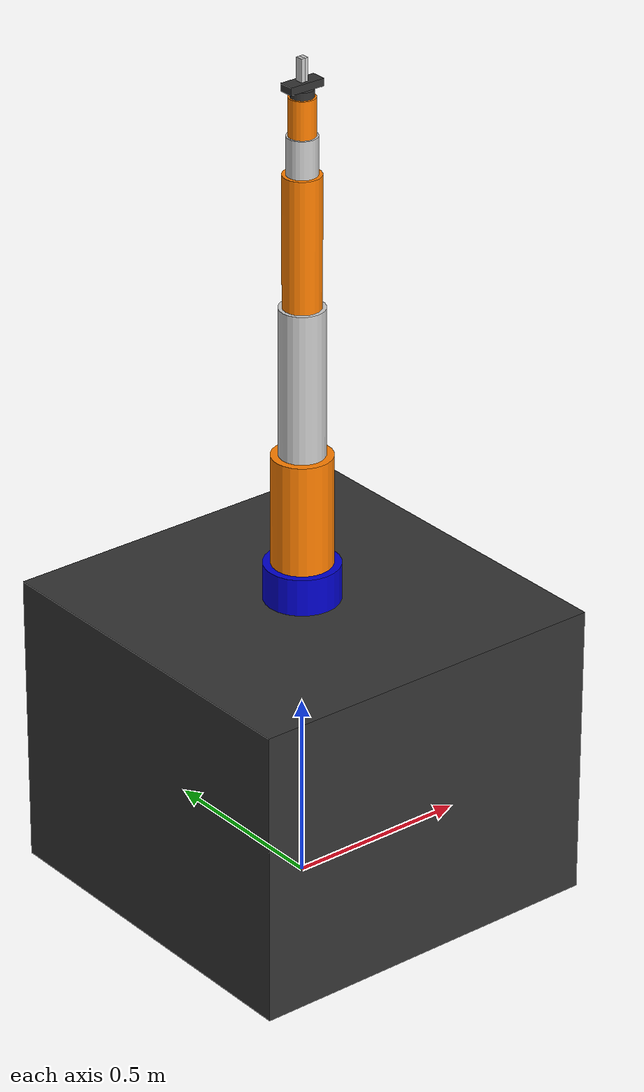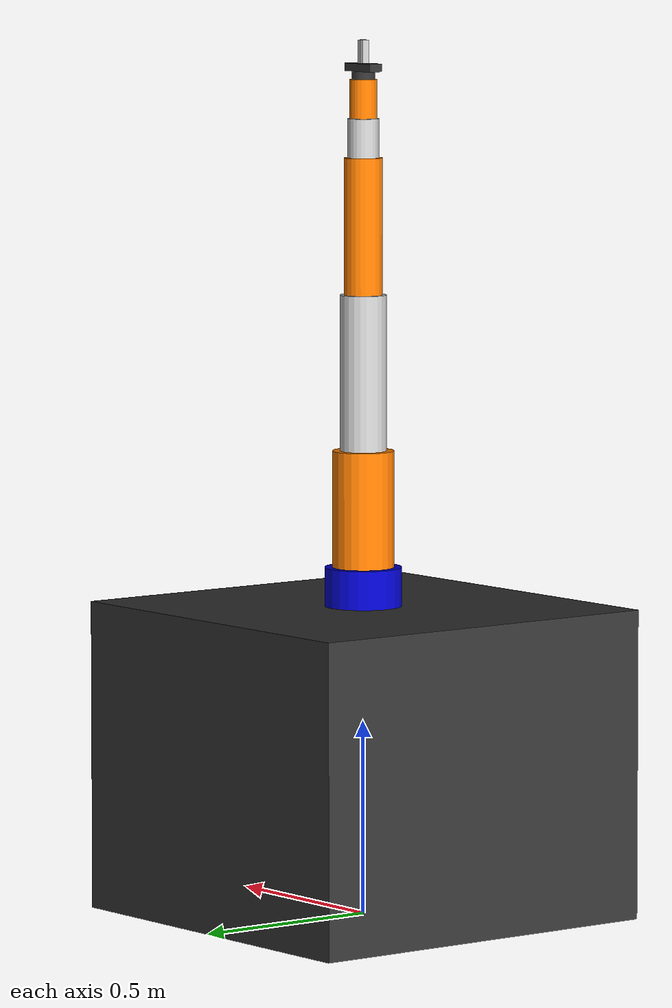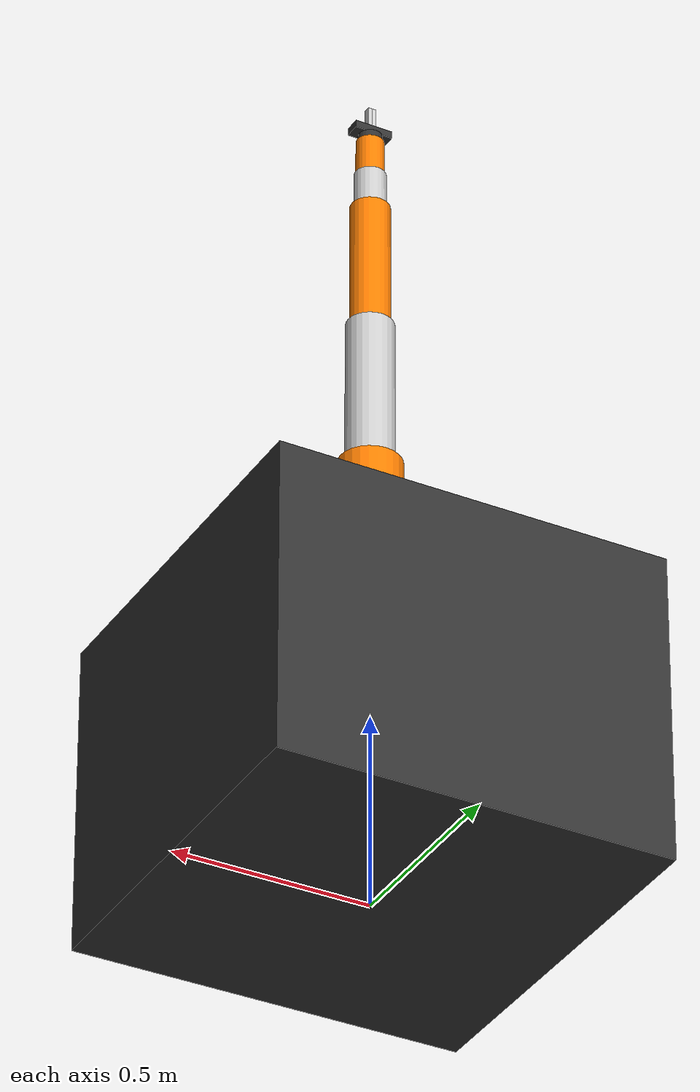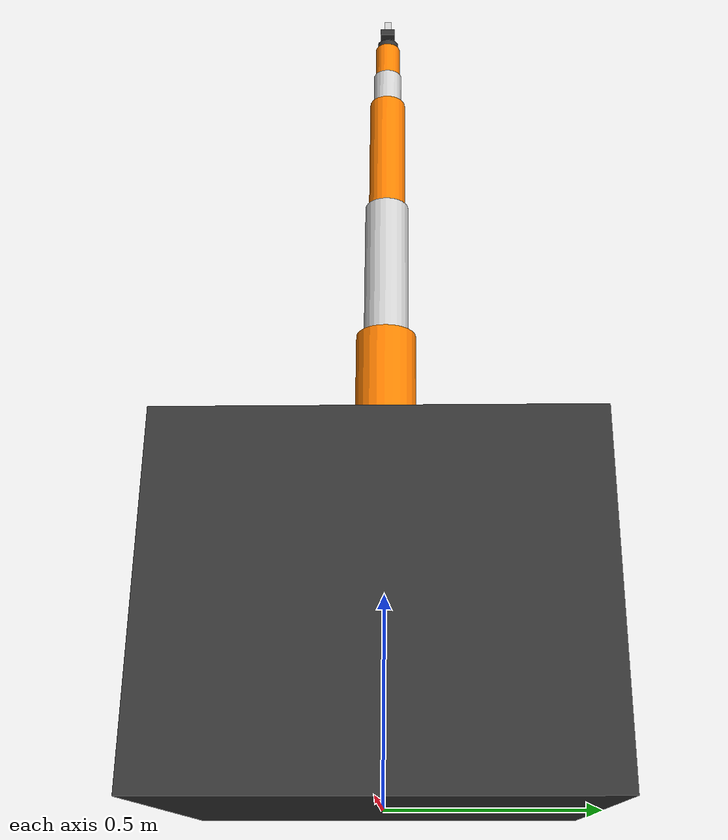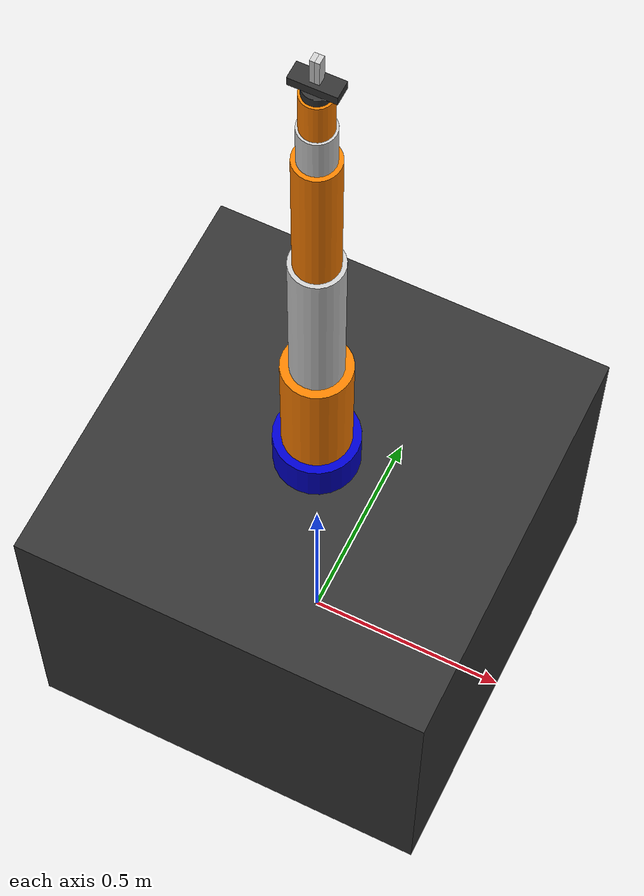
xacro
<?xml version="1.0"?>

<robot name="quartermaster"
    xmlns:xacro="http://ros.org/wiki/xacro">
    <xacro:property name="pi" value="3.14159"/>

    <link name="world"/>

    <joint name="world_to_table_joint" type="fixed">
        <parent link="world"/>
        <child link="table_link"/>
        <origin xyz="0 0 0" rpy="0 0 0"/>
    </joint>

    <link name="table_link">
        <visual>
            <origin xyz="0 0 0.4" rpy="0 0 0"/>
            <geometry>
                <box size="1.0 1.0 0.8"/>
            </geometry>
            <material name="dark_grey">
                <color rgba="0.2 0.2 0.2 1.0"/>
            </material>
        </visual>
        <collision>
            <origin xyz="0 0 0.4" rpy="0 0 0"/>
            <geometry>
                <box size="1.0 1.0 0.8"/>
            </geometry>
        </collision>
        <inertial>
            <origin xyz="0 0 0.4" rpy="0 0 0"/>
            <mass value="50.0"/>
            <inertia ixx="7.33" ixy="0.0" ixz="0.0" iyy="7.33" iyz="0.0" izz="8.33"/>
        </inertial>
    </link>

    <joint name="table_to_base_joint" type="fixed">
        <parent link="table_link"/>
        <child link="base_link"/>
        <origin xyz="0 0 0.8" rpy="0 0 0"/>
    </joint>

    <link name="base_link">
        <visual>
            <origin xyz="0 0 0.05" rpy="0 0 0"/>
            <geometry>
                <cylinder radius="0.1" length="0.1"/>
            </geometry>
            <material name="blue">
                <color rgba="0.0 0.0 0.8 1.0"/>
            </material>
        </visual>
        <collision>
            <origin xyz="0 0 0.05" rpy="0 0 0"/>
            <geometry>
                <cylinder radius="0.1" length="0.1"/>
            </geometry>
        </collision>
        <inertial>
            <origin xyz="0 0 0.05" rpy="0 0 0"/>
            <mass value="5.0"/>
            <inertia ixx="0.0167" ixy="0.0" ixz="0.0" iyy="0.0167" iyz="0.0" izz="0.025"/>
        </inertial>
    </link>

    <joint name="joint_1" type="revolute">
        <parent link="base_link"/>
        <child link="link_1"/>
        <origin xyz="0 0 0.1" rpy="0 0 0"/>
        <axis xyz="0 0 1"/>
        <limit lower="-3.14159" upper="3.14159" effort="100.0" velocity="2.0"/>
        <dynamics damping="0.1" friction="0.1"/>
    </joint>

    <link name="link_1">
        <visual>
            <origin xyz="0 0 0.15" rpy="0 0 0"/>
            <geometry>
                <cylinder radius="0.08" length="0.3"/>
            </geometry>
            <material name="orange">
                <color rgba="1.0 0.5 0.0 1.0"/>
            </material>
        </visual>
        <collision>
            <origin xyz="0 0 0.15" rpy="0 0 0"/>
            <geometry>
                <cylinder radius="0.08" length="0.3"/>
            </geometry>
        </collision>
        <inertial>
            <origin xyz="0 0 0.15" rpy="0 0 0"/>
            <mass value="3.5"/>
            <inertia ixx="0.028" ixy="0.0" ixz="0.0" iyy="0.028" iyz="0.0" izz="0.011"/>
        </inertial>
    </link>

    <joint name="joint_2" type="revolute">
        <parent link="link_1"/>
        <child link="link_2"/>
        <origin xyz="0 0 0.3" rpy="0 0 0"/>
        <axis xyz="0 1 0"/>
        <limit lower="-1.5708" upper="1.5708" effort="150.0" velocity="1.5"/>
        <dynamics damping="0.2" friction="0.2"/>
    </joint>

    <link name="link_2">
        <visual>
            <origin xyz="0 0 0.2" rpy="0 0 0"/>
            <geometry>
                <cylinder radius="0.06" length="0.4"/>
            </geometry>
            <material name="silver">
                <color rgba="0.8 0.8 0.8 1.0"/>
            </material>
        </visual>
        <collision>
            <origin xyz="0 0 0.2" rpy="0 0 0"/>
            <geometry>
                <cylinder radius="0.06" length="0.4"/>
            </geometry>
        </collision>
        <inertial>
            <origin xyz="0 0 0.2" rpy="0 0 0"/>
            <mass value="4.0"/>
            <inertia ixx="0.0569" ixy="0.0" ixz="0.0" iyy="0.0569" iyz="0.0" izz="0.0072"/>
        </inertial>
    </link>

    <joint name="joint_3" type="revolute">
        <parent link="link_2"/>
        <child link="link_3"/>
        <origin xyz="0 0 0.4" rpy="0 0 0"/>
        <axis xyz="0 1 0"/>
        <limit lower="-2.0" upper="2.0" effort="100.0" velocity="2.0"/>
        <dynamics damping="0.1" friction="0.1"/>
    </joint>

    <link name="link_3">
        <visual>
            <origin xyz="0 0 0.175" rpy="0 0 0"/>
            <geometry>
                <cylinder radius="0.05" length="0.35"/>
            </geometry>
            <material name="orange"/>
        </visual>
        <collision>
            <origin xyz="0 0 0.175" rpy="0 0 0"/>
            <geometry>
                <cylinder radius="0.05" length="0.35"/>
            </geometry>
        </collision>
        <inertial>
            <origin xyz="0 0 0.175" rpy="0 0 0"/>
            <mass value="2.5"/>
            <inertia ixx="0.027" ixy="0.0" ixz="0.0" iyy="0.027" iyz="0.0" izz="0.0031"/>
        </inertial>
    </link>

    <joint name="joint_4" type="revolute">
        <parent link="link_3"/>
        <child link="link_4"/>
        <origin xyz="0 0 0.35" rpy="0 0 0"/>
        <axis xyz="0 0 1"/>
        <limit lower="-3.14159" upper="3.14159" effort="50.0" velocity="2.5"/>
        <dynamics damping="0.1" friction="0.1"/>
    </joint>

    <link name="link_4">
        <visual>
            <origin xyz="0 0 0.05" rpy="0 0 0"/>
            <geometry>
                <cylinder radius="0.04" length="0.1"/>
            </geometry>
            <material name="silver"/>
        </visual>
        <collision>
            <origin xyz="0 0 0.05" rpy="0 0 0"/>
            <geometry>
                <cylinder radius="0.04" length="0.1"/>
            </geometry>
        </collision>
        <inertial>
            <origin xyz="0 0 0.05" rpy="0 0 0"/>
            <mass value="1.2"/>
            <inertia ixx="0.002" ixy="0.0" ixz="0.0" iyy="0.002" iyz="0.0" izz="0.001"/>
        </inertial>
    </link>

    <joint name="joint_5" type="revolute">
        <parent link="link_4"/>
        <child link="link_5"/>
        <origin xyz="0 0 0.1" rpy="0 0 0"/>
        <axis xyz="0 1 0"/>
        <limit lower="-1.754" upper="1.754" effort="40.0" velocity="3.0"/>
        <dynamics damping="0.1" friction="0.1"/>
    </joint>

    <link name="link_5">
        <visual>
            <origin xyz="0 0 0.05" rpy="0 0 0"/>
            <geometry>
                <cylinder radius="0.035" length="0.1"/>
            </geometry>
            <material name="orange"/>
        </visual>
        <collision>
            <origin xyz="0 0 0.05" rpy="0 0 0"/>
            <geometry>
                <cylinder radius="0.035" length="0.1"/>
            </geometry>
        </collision>
        <inertial>
            <origin xyz="0 0 0.05" rpy="0 0 0"/>
            <mass value="1.0"/>
            <inertia ixx="0.0011" ixy="0.0" ixz="0.0" iyy="0.0011" iyz="0.0" izz="0.0006"/>
        </inertial>
    </link>

    <joint name="joint_6" type="revolute">
        <parent link="link_5"/>
        <child link="link_6"/>
        <origin xyz="0 0 0.1" rpy="0 0 0"/>
        <axis xyz="0 0 1"/>
        <limit lower="-3.14159" upper="3.14159" effort="20.0" velocity="3.5"/>
        <dynamics damping="0.05" friction="0.05"/>
    </joint>

    <link name="link_6">
        <visual>
            <origin xyz="0 0 0.01" rpy="0 0 0"/>
            <geometry>
                <cylinder radius="0.03" length="0.02"/>
            </geometry>
            <material name="dark_grey"/>
        </visual>
        <collision>
            <origin xyz="0 0 0.01" rpy="0 0 0"/>
            <geometry>
                <cylinder radius="0.03" length="0.02"/>
            </geometry>
        </collision>
        <inertial>
            <origin xyz="0 0 0.01" rpy="0 0 0"/>
            <mass value="0.3"/>
            <inertia ixx="0.0001" ixy="0.0" ixz="0.0" iyy="0.0001" iyz="0.0" izz="0.0002"/>
        </inertial>
    </link>

    <!-- ============ GRIPPER ============ -->

    <!-- Palm: rigidly bolted to the wrist (link_6) -->
    <joint name="gripper_base_joint" type="fixed">
        <parent link="link_6"/>
        <child link="gripper_base_link"/>
        <origin xyz="0 0 0.02" rpy="0 0 0"/>
    </joint>

    <link name="gripper_base_link">
        <visual>
            <origin xyz="0 0 0.01" rpy="0 0 0"/>
            <geometry>
                <box size="0.10 0.04 0.02"/>
            </geometry>
            <material name="dark_grey"/>
        </visual>
        <collision>
            <origin xyz="0 0 0.01" rpy="0 0 0"/>
            <geometry>
                <box size="0.10 0.04 0.02"/>
            </geometry>
        </collision>
        <inertial>
            <origin xyz="0 0 0.01" rpy="0 0 0"/>
            <mass value="0.2"/>
            <inertia ixx="0.00003" ixy="0.0" ixz="0.0" iyy="0.00017" iyz="0.0" izz="0.00019"/>
        </inertial>
    </link>

    <!-- Left finger: the ACTIVE joint (slides outward along +x) -->
    <joint name="left_finger_joint" type="prismatic">
        <parent link="gripper_base_link"/>
        <child link="left_finger_link"/>
        <origin xyz="0.005 0 0.02" rpy="0 0 0"/>
        <axis xyz="1 0 0"/>
        <limit lower="0.0" upper="0.04" effort="50.0" velocity="0.1"/>
    </joint>

    <link name="left_finger_link">
        <visual>
            <origin xyz="0 0 0.03" rpy="0 0 0"/>
            <geometry>
                <box size="0.01 0.02 0.06"/>
            </geometry>
            <material name="silver"/>
        </visual>
        <collision>
            <origin xyz="0 0 0.03" rpy="0 0 0"/>
            <geometry>
                <box size="0.01 0.02 0.06"/>
            </geometry>
        </collision>
        <inertial>
            <origin xyz="0 0 0.03" rpy="0 0 0"/>
            <mass value="0.05"/>
            <inertia ixx="0.000017" ixy="0.0" ixz="0.0" iyy="0.000015" iyz="0.0" izz="0.000002"/>
        </inertial>
    </link>

    <!-- Right finger: now independently commanded (no mimic) -->
    <joint name="right_finger_joint" type="prismatic">
        <parent link="gripper_base_link"/>
        <child link="right_finger_link"/>
        <origin xyz="-0.005 0 0.02" rpy="0 0 0"/>
        <axis xyz="-1 0 0"/>
        <limit lower="0.0" upper="0.04" effort="50.0" velocity="0.1"/>

    </joint>

    <link name="right_finger_link">
        <visual>
            <origin xyz="0 0 0.03" rpy="0 0 0"/>
            <geometry>
                <box size="0.01 0.02 0.06"/>
            </geometry>
            <material name="silver"/>
        </visual>
        <collision>
            <origin xyz="0 0 0.03" rpy="0 0 0"/>
            <geometry>
                <box size="0.01 0.02 0.06"/>
            </geometry>
        </collision>
        <inertial>
            <origin xyz="0 0 0.03" rpy="0 0 0"/>
            <mass value="0.05"/>
            <inertia ixx="0.000017" ixy="0.0" ixz="0.0" iyy="0.000015" iyz="0.0" izz="0.000002"/>
        </inertial>
    </link>

    <!-- Tool Center Point: the frame MTC will aim at the object (between the fingertips) -->
    <joint name="gripper_tcp_joint" type="fixed">
        <parent link="gripper_base_link"/>
        <child link="gripper_tcp_link"/>
        <origin xyz="0 0 0.06" rpy="0 0 0"/>
    </joint>

    <link name="gripper_tcp_link"/>

    <xacro:arg name="use_gazebo" default="false" />
    <xacro:if value="$(arg use_gazebo)">
        <xacro:include filename="$(find quartermaster_description)/urdf/quartermaster.gazebo.xacro" />
    </xacro:if>
</robot>
